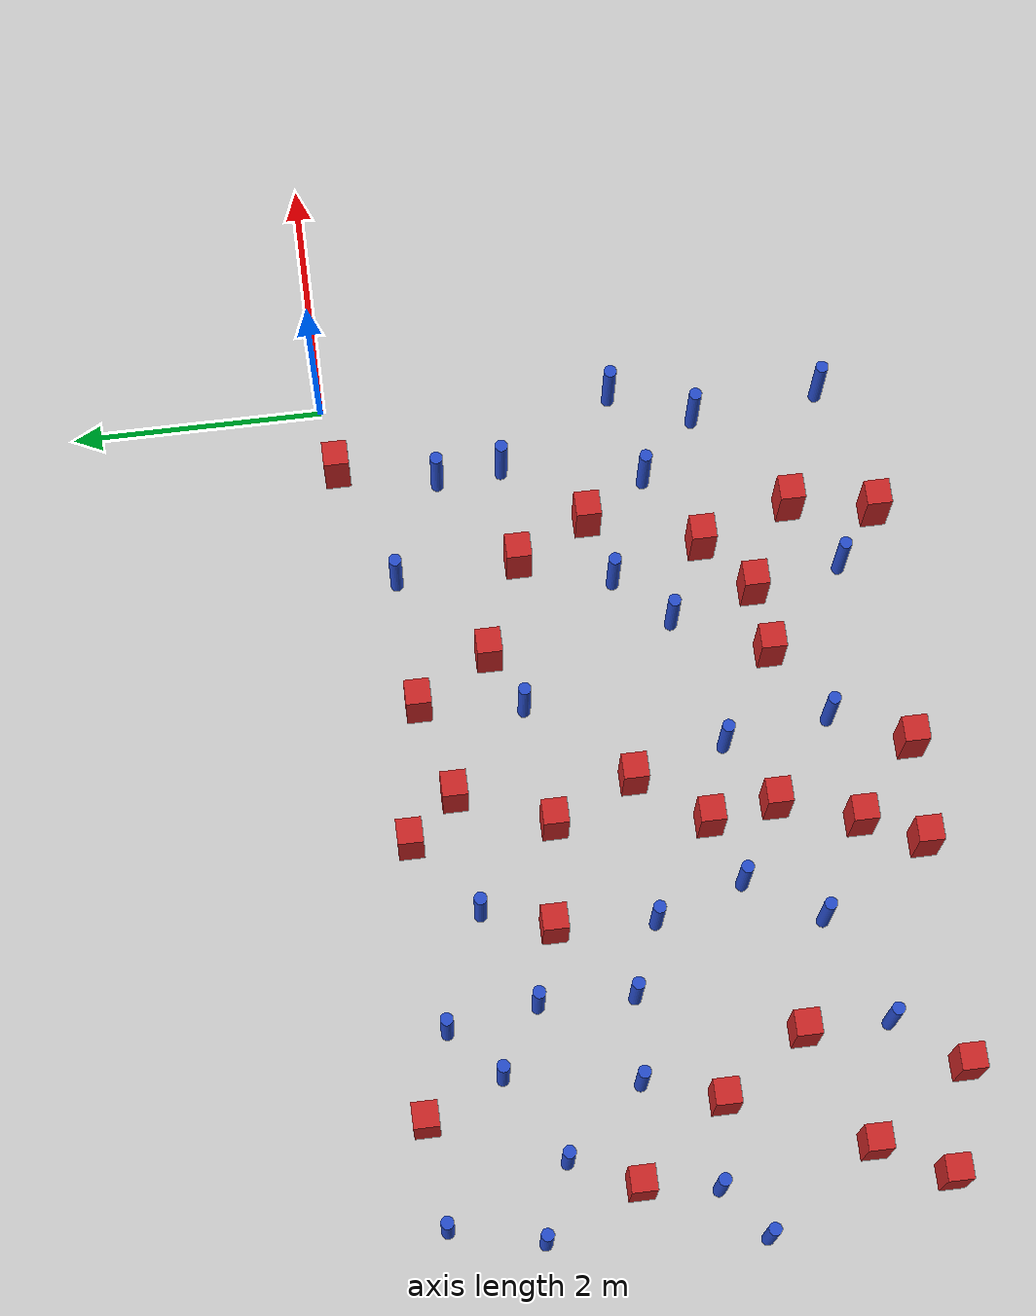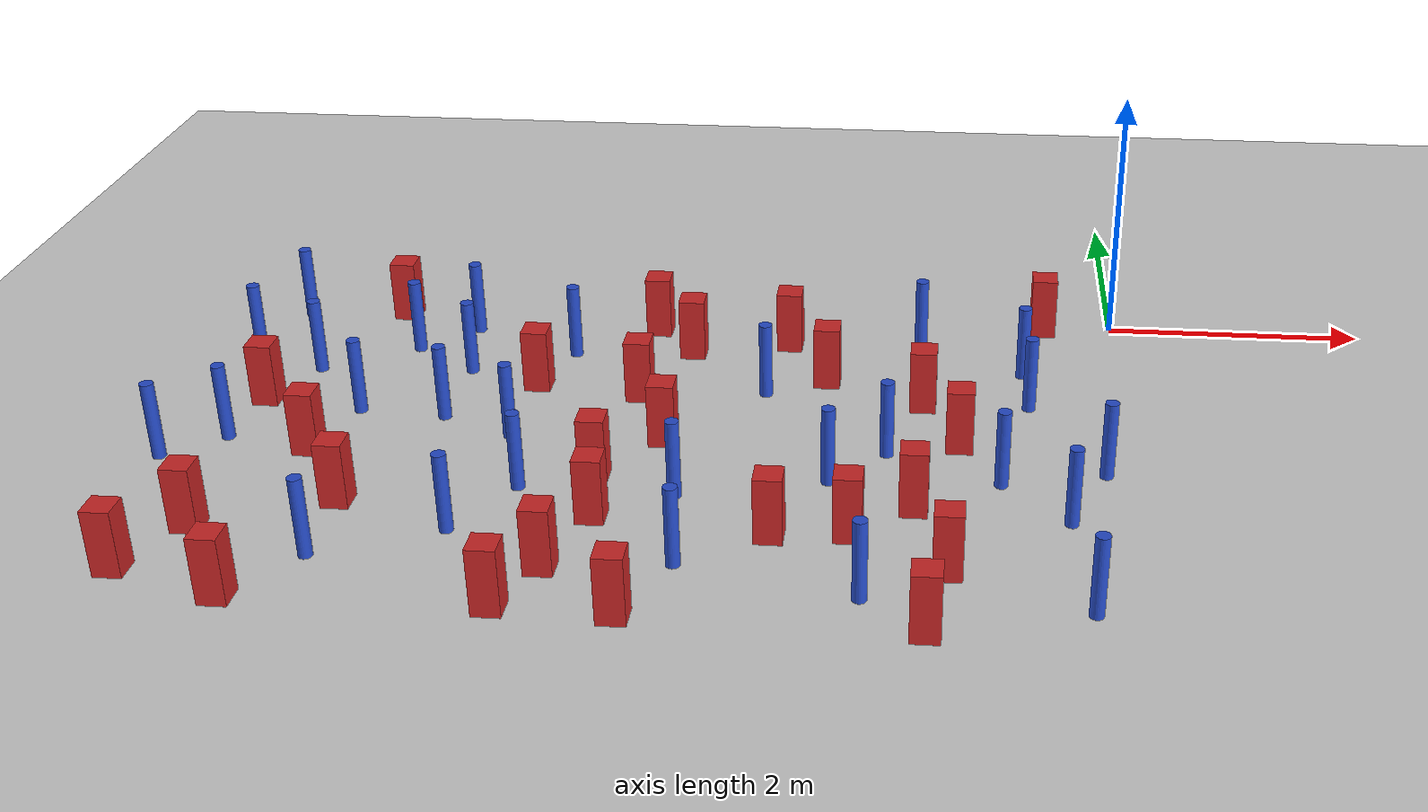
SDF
<sdf version="1.6">
 <world name="default">
  <model name="ground_plane">
   <static>1</static>
   <link name="link">
    <collision name="collision">
     <geometry><plane><normal>0 0 1</normal><size>100 100</size></plane></geometry>
     <surface><friction><ode><mu>100</mu><mu2>50</mu2></ode></friction></surface>
    </collision>
    <visual name="visual">
     <cast_shadows>0</cast_shadows>
     <geometry><plane><normal>0 0 1</normal><size>100 100</size></plane></geometry>
     <material>
      <ambient>1.0 1.0 1.0 1.0</ambient>
      <diffuse>0.8 0.8 0.8 1.0</diffuse>
      <specular>0.01 0.01 0.01 1.000000</specular>
     </material>
    </visual>
   </link>
  </model>
  <model name="square_post_obstacle4">
   <static>true</static>
   <pose>-1.2754052934 -3.62407108319 8.22691968438e-08 7.2212513382e-06 -7.54495500217e-07 2.29674213826e-05</pose>
   <link name="link">
    <pose>0 0 0.25 0 -0 0</pose>
    <inertial>
     <mass>100</mass>
     <inertia>
      <ixx>0.166667</ixx>
      <ixy>0</ixy>
      <ixz>0</ixz>
      <iyy>0.166667</iyy>
      <iyz>0</iyz>
      <izz>0.166667</izz>
     </inertia>
    </inertial>
    <collision name="collision"><geometry><box><size>.2 .2 .5</size></box></geometry></collision>
    <visual name="visual">
     <geometry><box><size>.2 .2 .5</size></box></geometry>
     <material>
      <script><name>Gazebo/Red</name><uri>file://media/materials/scripts/gazebo.material</uri></script>
     </material>
    </visual>
   </link>
  </model>
  <model name="pole_obstacle5">
   <static>true</static>
   <pose>-4.65952550141 -3.3882482919 2.88873142074e-08 -9.90536690245e-09 4.6021994898e-07 -1.20965994966e-07</pose>
   <link name="link">
    <pose>0 0 0.3 0 -0 0</pose>
    <inertial>
     <mass>1</mass>
     <inertia><ixx>0.145833</ixx><ixy>0</ixy><ixz>0</ixz><iyy>0.145833</iyy><iyz>0</iyz><izz>0.125</izz></inertia>
    </inertial>
    <collision name="collision">
     <geometry><cylinder><radius>0.05</radius><length>.6</length></cylinder></geometry>
    </collision>
    <visual name="visual">
     <geometry><cylinder><radius>0.05</radius><length>.6</length></cylinder></geometry>
     <material>
      <script><name>Gazebo/Blue</name><uri>file://media/materials/scripts/gazebo.material</uri></script>
     </material>
    </visual>
   </link>
  </model>
  <model name="square_post_obstacle7">
   <static>true</static>
   <pose>-1.21749053207 -2.01002110058 8.22691968438e-08 7.2212513382e-06 -7.54495500217e-07 2.29674213826e-05</pose>
   <link name="link">
    <pose>0 0 0.25 0 -0 0</pose>
    <inertial>
     <mass>100</mass>
     <inertia>
      <ixx>0.166667</ixx>
      <ixy>0</ixy>
      <ixz>0</ixz>
      <iyy>0.166667</iyy>
      <iyz>0</iyz>
      <izz>0.166667</izz>
     </inertia>
    </inertial>
    <collision name="collision"><geometry><box><size>.2 .2 .5</size></box></geometry></collision>
    <visual name="visual">
     <geometry><box><size>.2 .2 .5</size></box></geometry>
     <material>
      <script><name>Gazebo/Red</name><uri>file://media/materials/scripts/gazebo.material</uri></script>
     </material>
    </visual>
   </link>
  </model>
  <model name="square_post_obstacle10">
   <static>true</static>
   <pose>-5.9056552785 -4.26731862968 8.22691968438e-08 7.22125133819e-06 -7.54495500217e-07 2.29674213826e-05</pose>
   <link name="link">
    <pose>0 0 0.25 0 -0 0</pose>
    <inertial>
     <mass>100</mass>
     <inertia>
      <ixx>0.166667</ixx>
      <ixy>0</ixy>
      <ixz>0</ixz>
      <iyy>0.166667</iyy>
      <iyz>0</iyz>
      <izz>0.166667</izz>
     </inertia>
    </inertial>
    <collision name="collision"><geometry><box><size>.2 .2 .5</size></box></geometry></collision>
    <visual name="visual">
     <geometry><box><size>.2 .2 .5</size></box></geometry>
     <material>
      <script><name>Gazebo/Red</name><uri>file://media/materials/scripts/gazebo.material</uri></script>
     </material>
    </visual>
   </link>
  </model>
  <model name="square_post_obstacle29">
   <static>true</static>
   <pose>-0.556420358068 -0.08132773239 8.22691968438e-08 7.2212513382e-06 -7.54495500217e-07 2.29674213826e-05</pose>
   <link name="link">
    <pose>0 0 0.25 0 -0 0</pose>
    <inertial>
     <mass>100</mass>
     <inertia>
      <ixx>0.166667</ixx>
      <ixy>0</ixy>
      <ixz>0</ixz>
      <iyy>0.166667</iyy>
      <iyz>0</iyz>
      <izz>0.166667</izz>
     </inertia>
    </inertial>
    <collision name="collision"><geometry><box><size>.2 .2 .5</size></box></geometry></collision>
    <visual name="visual">
     <geometry><box><size>.2 .2 .5</size></box></geometry>
     <material>
      <script><name>Gazebo/Red</name><uri>file://media/materials/scripts/gazebo.material</uri></script>
     </material>
    </visual>
   </link>
  </model>
  <model name="pole_obstacle26">
   <static>true</static>
   <pose>-6.83600896861 -0.968088789849 2.88873142074e-08 -9.90536689779e-09 4.60219948991e-07 -1.20965994959e-07</pose>
   <link name="link">
    <pose>0 0 0.3 0 -0 0</pose>
    <inertial>
     <mass>1</mass>
     <inertia><ixx>0.145833</ixx><ixy>0</ixy><ixz>0</ixz><iyy>0.145833</iyy><iyz>0</iyz><izz>0.125</izz></inertia>
    </inertial>
    <collision name="collision">
     <geometry><cylinder><radius>0.05</radius><length>.6</length></cylinder></geometry>
    </collision>
    <visual name="visual">
     <geometry><cylinder><radius>0.05</radius><length>.6</length></cylinder></geometry>
     <material>
      <script><name>Gazebo/Blue</name><uri>file://media/materials/scripts/gazebo.material</uri></script>
     </material>
    </visual>
   </link>
  </model>
  <model name="square_post_obstacle32">
   <static>true</static>
   <pose>-5.50566018214 -3.09363316899 8.22691968438e-08 7.2212513382e-06 -7.54495500217e-07 2.29674213826e-05</pose>
   <link name="link">
    <pose>0 0 0.25 0 -0 0</pose>
    <inertial>
     <mass>100</mass>
     <inertia>
      <ixx>0.166667</ixx>
      <ixy>0</ixy>
      <ixz>0</ixz>
      <iyy>0.166667</iyy>
      <iyz>0</iyz>
      <izz>0.166667</izz>
     </inertia>
    </inertial>
    <collision name="collision"><geometry><box><size>.2 .2 .5</size></box></geometry></collision>
    <visual name="visual">
     <geometry><box><size>.2 .2 .5</size></box></geometry>
     <material>
      <script><name>Gazebo/Red</name><uri>file://media/materials/scripts/gazebo.material</uri></script>
     </material>
    </visual>
   </link>
  </model>
  <model name="pole_obstacle39">
   <static>true</static>
   <pose>-0.334573769769 -4.00441448272 2.88873142074e-08 -9.90536689517e-09 4.60219948997e-07 -1.20965994954e-07</pose>
   <link name="link">
    <pose>0 0 0.3 0 -0 0</pose>
    <inertial>
     <mass>1</mass>
     <inertia><ixx>0.145833</ixx><ixy>0</ixy><ixz>0</ixz><iyy>0.145833</iyy><iyz>0</iyz><izz>0.125</izz></inertia>
    </inertial>
    <collision name="collision">
     <geometry><cylinder><radius>0.05</radius><length>.6</length></cylinder></geometry>
    </collision>
    <visual name="visual">
     <geometry><cylinder><radius>0.05</radius><length>.6</length></cylinder></geometry>
     <material>
      <script><name>Gazebo/Blue</name><uri>file://media/materials/scripts/gazebo.material</uri></script>
     </material>
    </visual>
   </link>
  </model>
  <model name="square_post_obstacle40">
   <static>true</static>
   <pose>-3.67037468231 -1.43494416955 8.22691968438e-08 7.2212513382e-06 -7.54495500217e-07 2.29674213826e-05</pose>
   <link name="link">
    <pose>0 0 0.25 0 -0 0</pose>
    <inertial>
     <mass>100</mass>
     <inertia>
      <ixx>0.166667</ixx>
      <ixy>0</ixy>
      <ixz>0</ixz>
      <iyy>0.166667</iyy>
      <iyz>0</iyz>
      <izz>0.166667</izz>
     </inertia>
    </inertial>
    <collision name="collision"><geometry><box><size>.2 .2 .5</size></box></geometry></collision>
    <visual name="visual">
     <geometry><box><size>.2 .2 .5</size></box></geometry>
     <material>
      <script><name>Gazebo/Red</name><uri>file://media/materials/scripts/gazebo.material</uri></script>
     </material>
    </visual>
   </link>
  </model>
  <model name="square_post_obstacle46">
   <static>true</static>
   <pose>-6.41098922806 -3.48403583572 8.22691968438e-08 7.2212513382e-06 -7.54495500217e-07 2.29674213826e-05</pose>
   <link name="link">
    <pose>0 0 0.25 0 -0 0</pose>
    <inertial>
     <mass>100</mass>
     <inertia>
      <ixx>0.166667</ixx>
      <ixy>0</ixy>
      <ixz>0</ixz>
      <iyy>0.166667</iyy>
      <iyz>0</iyz>
      <izz>0.166667</izz>
     </inertia>
    </inertial>
    <collision name="collision"><geometry><box><size>.2 .2 .5</size></box></geometry></collision>
    <visual name="visual">
     <geometry><box><size>.2 .2 .5</size></box></geometry>
     <material>
      <script><name>Gazebo/Red</name><uri>file://media/materials/scripts/gazebo.material</uri></script>
     </material>
    </visual>
   </link>
  </model>
  <model name="pole_obstacle53">
   <static>true</static>
   <pose>-0.168261608615 -2.32770708085 2.88873142074e-08 -9.9053669244e-09 4.60219948928e-07 -1.20965994988e-07</pose>
   <link name="link">
    <pose>0 0 0.3 0 -0 0</pose>
    <inertial>
     <mass>1</mass>
     <inertia><ixx>0.145833</ixx><ixy>0</ixy><ixz>0</ixz><iyy>0.145833</iyy><iyz>0</iyz><izz>0.125</izz></inertia>
    </inertial>
    <collision name="collision">
     <geometry><cylinder><radius>0.05</radius><length>.6</length></cylinder></geometry>
    </collision>
    <visual name="visual">
     <geometry><cylinder><radius>0.05</radius><length>.6</length></cylinder></geometry>
     <material>
      <script><name>Gazebo/Blue</name><uri>file://media/materials/scripts/gazebo.material</uri></script>
     </material>
    </visual>
   </link>
  </model>
  <model name="pole_obstacle54">
   <static>true</static>
   <pose>-3.19066047119 -2.83174068001 2.88873142074e-08 -9.90536690232e-09 4.6021994898e-07 -1.20965994968e-07</pose>
   <link name="link">
    <pose>0 0 0.3 0 -0 0</pose>
    <inertial>
     <mass>1</mass>
     <inertia><ixx>0.145833</ixx><ixy>0</ixy><ixz>0</ixz><iyy>0.145833</iyy><iyz>0</iyz><izz>0.125</izz></inertia>
    </inertial>
    <collision name="collision">
     <geometry><cylinder><radius>0.05</radius><length>.6</length></cylinder></geometry>
    </collision>
    <visual name="visual">
     <geometry><cylinder><radius>0.05</radius><length>.6</length></cylinder></geometry>
     <material>
      <script><name>Gazebo/Blue</name><uri>file://media/materials/scripts/gazebo.material</uri></script>
     </material>
    </visual>
   </link>
  </model>
  <model name="pole_obstacle55">
   <static>true</static>
   <pose>-2.13584533812 -2.56666124665 2.88873142074e-08 -9.90536690232e-09 4.6021994898e-07 -1.20965994968e-07</pose>
   <link name="link">
    <pose>0 0 0.3 0 -0 0</pose>
    <inertial>
     <mass>1</mass>
     <inertia><ixx>0.145833</ixx><ixy>0</ixy><ixz>0</ixz><iyy>0.145833</iyy><iyz>0</iyz><izz>0.125</izz></inertia>
    </inertial>
    <collision name="collision">
     <geometry><cylinder><radius>0.05</radius><length>.6</length></cylinder></geometry>
    </collision>
    <visual name="visual">
     <geometry><cylinder><radius>0.05</radius><length>.6</length></cylinder></geometry>
     <material>
      <script><name>Gazebo/Blue</name><uri>file://media/materials/scripts/gazebo.material</uri></script>
     </material>
    </visual>
   </link>
  </model>
  <model name="pole_obstacle60">
   <static>true</static>
   <pose>-6.66156100792 -0.257047077942 2.88873142074e-08 -9.9053668927e-09 4.60219949003e-07 -1.20965994954e-07</pose>
   <link name="link">
    <pose>0 0 0.3 0 -0 0</pose>
    <inertial>
     <mass>1</mass>
     <inertia><ixx>0.145833</ixx><ixy>0</ixy><ixz>0</ixz><iyy>0.145833</iyy><iyz>0</iyz><izz>0.125</izz></inertia>
    </inertial>
    <collision name="collision">
     <geometry><cylinder><radius>0.05</radius><length>.6</length></cylinder></geometry>
    </collision>
    <visual name="visual">
     <geometry><cylinder><radius>0.05</radius><length>.6</length></cylinder></geometry>
     <material>
      <script><name>Gazebo/Blue</name><uri>file://media/materials/scripts/gazebo.material</uri></script>
     </material>
    </visual>
   </link>
  </model>
  <model name="pole_obstacle62">
   <static>true</static>
   <pose>-0.736655934792 -0.868895056181 2.88873142074e-08 -9.90536689967e-09 4.60219948986e-07 -1.20965994963e-07</pose>
   <link name="link">
    <pose>0 0 0.3 0 -0 0</pose>
    <inertial>
     <mass>1</mass>
     <inertia><ixx>0.145833</ixx><ixy>0</ixy><ixz>0</ixz><iyy>0.145833</iyy><iyz>0</iyz><izz>0.125</izz></inertia>
    </inertial>
    <collision name="collision">
     <geometry><cylinder><radius>0.05</radius><length>.6</length></cylinder></geometry>
    </collision>
    <visual name="visual">
     <geometry><cylinder><radius>0.05</radius><length>.6</length></cylinder></geometry>
     <material>
      <script><name>Gazebo/Blue</name><uri>file://media/materials/scripts/gazebo.material</uri></script>
     </material>
    </visual>
   </link>
  </model>
  <model name="square_post_obstacle65">
   <static>true</static>
   <pose>-3.69109883029 -0.317123439873 8.22691968438e-08 7.2212513382e-06 -7.54495500217e-07 2.29674213826e-05</pose>
   <link name="link">
    <pose>0 0 0.25 0 -0 0</pose>
    <inertial>
     <mass>100</mass>
     <inertia>
      <ixx>0.166667</ixx>
      <ixy>0</ixy>
      <ixz>0</ixz>
      <iyy>0.166667</iyy>
      <iyz>0</iyz>
      <izz>0.166667</izz>
     </inertia>
    </inertial>
    <collision name="collision"><geometry><box><size>.2 .2 .5</size></box></geometry></collision>
    <visual name="visual">
     <geometry><box><size>.2 .2 .5</size></box></geometry>
     <material>
      <script><name>Gazebo/Red</name><uri>file://media/materials/scripts/gazebo.material</uri></script>
     </material>
    </visual>
   </link>
  </model>
  <model name="square_post_obstacle73">
   <static>true</static>
   <pose>-4.48367584579 -1.32753151781 8.22691968438e-08 7.2212513382e-06 -7.54495500217e-07 2.29674213826e-05</pose>
   <link name="link">
    <pose>0 0 0.25 0 -0 0</pose>
    <inertial>
     <mass>100</mass>
     <inertia>
      <ixx>0.166667</ixx>
      <ixy>0</ixy>
      <ixz>0</ixz>
      <iyy>0.166667</iyy>
      <iyz>0</iyz>
      <izz>0.166667</izz>
     </inertia>
    </inertial>
    <collision name="collision"><geometry><box><size>.2 .2 .5</size></box></geometry></collision>
    <visual name="visual">
     <geometry><box><size>.2 .2 .5</size></box></geometry>
     <material>
      <script><name>Gazebo/Red</name><uri>file://media/materials/scripts/gazebo.material</uri></script>
     </material>
    </visual>
   </link>
  </model>
  <model name="pole_obstacle84">
   <static>true</static>
   <pose>-5.74529104234 -1.82798175392 2.88873142074e-08 -9.90536689445e-09 4.60219948999e-07 -1.20965994956e-07</pose>
   <link name="link">
    <pose>0 0 0.3 0 -0 0</pose>
    <inertial>
     <mass>1</mass>
     <inertia><ixx>0.145833</ixx><ixy>0</ixy><ixz>0</ixz><iyy>0.145833</iyy><iyz>0</iyz><izz>0.125</izz></inertia>
    </inertial>
    <collision name="collision">
     <geometry><cylinder><radius>0.05</radius><length>.6</length></cylinder></geometry>
    </collision>
    <visual name="visual">
     <geometry><cylinder><radius>0.05</radius><length>.6</length></cylinder></geometry>
     <material>
      <script><name>Gazebo/Blue</name><uri>file://media/materials/scripts/gazebo.material</uri></script>
     </material>
    </visual>
   </link>
  </model>
  <model name="pole_obstacle89">
   <static>true</static>
   <pose>-0.442863518455 -2.97269753947 2.88873142074e-08 -9.90536689663e-09 4.60219948993e-07 -1.20965994959e-07</pose>
   <link name="link">
    <pose>0 0 0.3 0 -0 0</pose>
    <inertial>
     <mass>1</mass>
     <inertia><ixx>0.145833</ixx><ixy>0</ixy><ixz>0</ixz><iyy>0.145833</iyy><iyz>0</iyz><izz>0.125</izz></inertia>
    </inertial>
    <collision name="collision">
     <geometry><cylinder><radius>0.05</radius><length>.6</length></cylinder></geometry>
    </collision>
    <visual name="visual">
     <geometry><cylinder><radius>0.05</radius><length>.6</length></cylinder></geometry>
     <material>
      <script><name>Gazebo/Blue</name><uri>file://media/materials/scripts/gazebo.material</uri></script>
     </material>
    </visual>
   </link>
  </model>
  <model name="pole_obstacle94">
   <static>true</static>
   <pose>-4.30374474331 -2.81215744634 2.88873142074e-08 -9.90536690245e-09 4.6021994898e-07 -1.20965994966e-07</pose>
   <link name="link">
    <pose>0 0 0.3 0 -0 0</pose>
    <inertial>
     <mass>1</mass>
     <inertia><ixx>0.145833</ixx><ixy>0</ixy><ixz>0</ixz><iyy>0.145833</iyy><iyz>0</iyz><izz>0.125</izz></inertia>
    </inertial>
    <collision name="collision">
     <geometry><cylinder><radius>0.05</radius><length>.6</length></cylinder></geometry>
    </collision>
    <visual name="visual">
     <geometry><cylinder><radius>0.05</radius><length>.6</length></cylinder></geometry>
     <material>
      <script><name>Gazebo/Blue</name><uri>file://media/materials/scripts/gazebo.material</uri></script>
     </material>
    </visual>
   </link>
  </model>
  <model name="pole_obstacle95">
   <static>true</static>
   <pose>-2.70999887276 -1.32281034531 2.88873142074e-08 -9.90536689395e-09 4.60219949e-07 -1.20965994953e-07</pose>
   <link name="link">
    <pose>0 0 0.3 0 -0 0</pose>
    <inertial>
     <mass>1</mass>
     <inertia><ixx>0.145833</ixx><ixy>0</ixy><ixz>0</ixz><iyy>0.145833</iyy><iyz>0</iyz><izz>0.125</izz></inertia>
    </inertial>
    <collision name="collision">
     <geometry><cylinder><radius>0.05</radius><length>.6</length></cylinder></geometry>
    </collision>
    <visual name="visual">
     <geometry><cylinder><radius>0.05</radius><length>.6</length></cylinder></geometry>
     <material>
      <script><name>Gazebo/Blue</name><uri>file://media/materials/scripts/gazebo.material</uri></script>
     </material>
    </visual>
   </link>
  </model>
  <model name="pole_obstacle102">
   <static>true</static>
   <pose>-5.06370864584 -1.13273483864 2.88873142074e-08 -9.90536689445e-09 4.60219948999e-07 -1.20965994956e-07</pose>
   <link name="link">
    <pose>0 0 0.3 0 -0 0</pose>
    <inertial>
     <mass>1</mass>
     <inertia><ixx>0.145833</ixx><ixy>0</ixy><ixz>0</ixz><iyy>0.145833</iyy><iyz>0</iyz><izz>0.125</izz></inertia>
    </inertial>
    <collision name="collision">
     <geometry><cylinder><radius>0.05</radius><length>.6</length></cylinder></geometry>
    </collision>
    <visual name="visual">
     <geometry><cylinder><radius>0.05</radius><length>.6</length></cylinder></geometry>
     <material>
      <script><name>Gazebo/Blue</name><uri>file://media/materials/scripts/gazebo.material</uri></script>
     </material>
    </visual>
   </link>
  </model>
  <model name="square_post_obstacle93">
   <static>true</static>
   <pose>-3.35913928134 -0.696120156664 8.22691968438e-08 7.2212513382e-06 -7.54495500217e-07 2.29674213826e-05</pose>
   <link name="link">
    <pose>0 0 0.25 0 -0 0</pose>
    <inertial>
     <mass>100</mass>
     <inertia>
      <ixx>0.166667</ixx>
      <ixy>0</ixy>
      <ixz>0</ixz>
      <iyy>0.166667</iyy>
      <iyz>0</iyz>
      <izz>0.166667</izz>
     </inertia>
    </inertial>
    <collision name="collision"><geometry><box><size>.2 .2 .5</size></box></geometry></collision>
    <visual name="visual">
     <geometry><box><size>.2 .2 .5</size></box></geometry>
     <material>
      <script><name>Gazebo/Red</name><uri>file://media/materials/scripts/gazebo.material</uri></script>
     </material>
    </visual>
   </link>
  </model>
  <model name="pole_obstacle105">
   <static>true</static>
   <pose>-5.18200273573 -0.427077900193 2.88873142074e-08 -9.90536689981e-09 4.60219948986e-07 -1.20965994962e-07</pose>
   <link name="link">
    <pose>0 0 0.3 0 -0 0</pose>
    <inertial>
     <mass>1</mass>
     <inertia><ixx>0.145833</ixx><ixy>0</ixy><ixz>0</ixz><iyy>0.145833</iyy><iyz>0</iyz><izz>0.125</izz></inertia>
    </inertial>
    <collision name="collision">
     <geometry><cylinder><radius>0.05</radius><length>.6</length></cylinder></geometry>
    </collision>
    <visual name="visual">
     <geometry><cylinder><radius>0.05</radius><length>.6</length></cylinder></geometry>
     <material>
      <script><name>Gazebo/Blue</name><uri>file://media/materials/scripts/gazebo.material</uri></script>
     </material>
    </visual>
   </link>
  </model>
  <model name="square_post_obstacle95">
   <static>true</static>
   <pose>-1.95020607538 -3.23850889879 8.22691968438e-08 7.2212513382e-06 -7.54495500217e-07 2.29674213826e-05</pose>
   <link name="link">
    <pose>0 0 0.25 0 -0 0</pose>
    <inertial>
     <mass>100</mass>
     <inertia>
      <ixx>0.166667</ixx>
      <ixy>0</ixy>
      <ixz>0</ixz>
      <iyy>0.166667</iyy>
      <iyz>0</iyz>
      <izz>0.166667</izz>
     </inertia>
    </inertial>
    <collision name="collision"><geometry><box><size>.2 .2 .5</size></box></geometry></collision>
    <visual name="visual">
     <geometry><box><size>.2 .2 .5</size></box></geometry>
     <material>
      <script><name>Gazebo/Red</name><uri>file://media/materials/scripts/gazebo.material</uri></script>
     </material>
    </visual>
   </link>
  </model>
  <model name="square_post_obstacle96">
   <static>true</static>
   <pose>-4.14881035281 -4.2437548899 8.22691968438e-08 7.2212513382e-06 -7.54495500217e-07 2.29674213826e-05</pose>
   <link name="link">
    <pose>0 0 0.25 0 -0 0</pose>
    <inertial>
     <mass>100</mass>
     <inertia>
      <ixx>0.166667</ixx>
      <ixy>0</ixy>
      <ixz>0</ixz>
      <iyy>0.166667</iyy>
      <iyz>0</iyz>
      <izz>0.166667</izz>
     </inertia>
    </inertial>
    <collision name="collision"><geometry><box><size>.2 .2 .5</size></box></geometry></collision>
    <visual name="visual">
     <geometry><box><size>.2 .2 .5</size></box></geometry>
     <material>
      <script><name>Gazebo/Red</name><uri>file://media/materials/scripts/gazebo.material</uri></script>
     </material>
    </visual>
   </link>
  </model>
  <model name="pole_obstacle116">
   <static>true</static>
   <pose>-4.52870570708 -2.11202772901 2.88873142074e-08 -9.90536690245e-09 4.6021994898e-07 -1.20965994966e-07</pose>
   <link name="link">
    <pose>0 0 0.3 0 -0 0</pose>
    <inertial>
     <mass>1</mass>
     <inertia><ixx>0.145833</ixx><ixy>0</ixy><ixz>0</ixz><iyy>0.145833</iyy><iyz>0</iyz><izz>0.125</izz></inertia>
    </inertial>
    <collision name="collision">
     <geometry><cylinder><radius>0.05</radius><length>.6</length></cylinder></geometry>
    </collision>
    <visual name="visual">
     <geometry><cylinder><radius>0.05</radius><length>.6</length></cylinder></geometry>
     <material>
      <script><name>Gazebo/Blue</name><uri>file://media/materials/scripts/gazebo.material</uri></script>
     </material>
    </visual>
   </link>
  </model>
  <model name="square_post_obstacle106">
   <static>true</static>
   <pose>-3.3530707692 -4.26904555448 8.22691968438e-08 7.2212513382e-06 -7.54495500217e-07 2.29674213826e-05</pose>
   <link name="link">
    <pose>0 0 0.25 0 -0 0</pose>
    <inertial>
     <mass>100</mass>
     <inertia>
      <ixx>0.166667</ixx>
      <ixy>0</ixy>
      <ixz>0</ixz>
      <iyy>0.166667</iyy>
      <iyz>0</iyz>
      <izz>0.166667</izz>
     </inertia>
    </inertial>
    <collision name="collision"><geometry><box><size>.2 .2 .5</size></box></geometry></collision>
    <visual name="visual">
     <geometry><box><size>.2 .2 .5</size></box></geometry>
     <material>
      <script><name>Gazebo/Red</name><uri>file://media/materials/scripts/gazebo.material</uri></script>
     </material>
    </visual>
   </link>
  </model>
  <model name="pole_obstacle120">
   <static>true</static>
   <pose>-6.59694678575 -2.29969951514 2.88873142074e-08 -9.90536690245e-09 4.6021994898e-07 -1.20965994966e-07</pose>
   <link name="link">
    <pose>0 0 0.3 0 -0 0</pose>
    <inertial>
     <mass>1</mass>
     <inertia><ixx>0.145833</ixx><ixy>0</ixy><ixz>0</ixz><iyy>0.145833</iyy><iyz>0</iyz><izz>0.125</izz></inertia>
    </inertial>
    <collision name="collision">
     <geometry><cylinder><radius>0.05</radius><length>.6</length></cylinder></geometry>
    </collision>
    <visual name="visual">
     <geometry><cylinder><radius>0.05</radius><length>.6</length></cylinder></geometry>
     <material>
      <script><name>Gazebo/Blue</name><uri>file://media/materials/scripts/gazebo.material</uri></script>
     </material>
    </visual>
   </link>
  </model>
  <model name="pole_obstacle132">
   <static>true</static>
   <pose>-1.74237011918 -2.15348211563 2.88873142074e-08 -9.90536689791e-09 4.6021994899e-07 -1.20965994959e-07</pose>
   <link name="link">
    <pose>0 0 0.3 0 -0 0</pose>
    <inertial>
     <mass>1</mass>
     <inertia><ixx>0.145833</ixx><ixy>0</ixy><ixz>0</ixz><iyy>0.145833</iyy><iyz>0</iyz><izz>0.125</izz></inertia>
    </inertial>
    <collision name="collision">
     <geometry><cylinder><radius>0.05</radius><length>.6</length></cylinder></geometry>
    </collision>
    <visual name="visual">
     <geometry><cylinder><radius>0.05</radius><length>.6</length></cylinder></geometry>
     <material>
      <script><name>Gazebo/Blue</name><uri>file://media/materials/scripts/gazebo.material</uri></script>
     </material>
    </visual>
   </link>
  </model>
  <model name="pole_obstacle134">
   <static>true</static>
   <pose>-5.57746530238 -0.80158244859 2.88873142074e-08 -9.90536689837e-09 4.60219948989e-07 -1.2096599496e-07</pose>
   <link name="link">
    <pose>0 0 0.3 0 -0 0</pose>
    <inertial>
     <mass>1</mass>
     <inertia><ixx>0.145833</ixx><ixy>0</ixy><ixz>0</ixz><iyy>0.145833</iyy><iyz>0</iyz><izz>0.125</izz></inertia>
    </inertial>
    <collision name="collision">
     <geometry><cylinder><radius>0.05</radius><length>.6</length></cylinder></geometry>
    </collision>
    <visual name="visual">
     <geometry><cylinder><radius>0.05</radius><length>.6</length></cylinder></geometry>
     <material>
      <script><name>Gazebo/Blue</name><uri>file://media/materials/scripts/gazebo.material</uri></script>
     </material>
    </visual>
   </link>
  </model>
  <model name="square_post_obstacle125">
   <static>true</static>
   <pose>-1.50068093244 -1.42296836731 8.22691968438e-08 7.2212513382e-06 -7.54495500217e-07 2.29674213826e-05</pose>
   <link name="link">
    <pose>0 0 0.25 0 -0 0</pose>
    <inertial>
     <mass>100</mass>
     <inertia>
      <ixx>0.166667</ixx>
      <ixy>0</ixy>
      <ixz>0</ixz>
      <iyy>0.166667</iyy>
      <iyz>0</iyz>
      <izz>0.166667</izz>
     </inertia>
    </inertial>
    <collision name="collision"><geometry><box><size>.2 .2 .5</size></box></geometry></collision>
    <visual name="visual">
     <geometry><box><size>.2 .2 .5</size></box></geometry>
     <material>
      <script><name>Gazebo/Red</name><uri>file://media/materials/scripts/gazebo.material</uri></script>
     </material>
    </visual>
   </link>
  </model>
  <model name="square_post_obstacle126">
   <static>true</static>
   <pose>-2.25302487423 -1.09808245157 8.22691968438e-08 7.2212513382e-06 -7.54495500217e-07 2.29674213826e-05</pose>
   <link name="link">
    <pose>0 0 0.25 0 -0 0</pose>
    <inertial>
     <mass>100</mass>
     <inertia>
      <ixx>0.166667</ixx>
      <ixy>0</ixy>
      <ixz>0</ixz>
      <iyy>0.166667</iyy>
      <iyz>0</iyz>
      <izz>0.166667</izz>
     </inertia>
    </inertial>
    <collision name="collision"><geometry><box><size>.2 .2 .5</size></box></geometry></collision>
    <visual name="visual">
     <geometry><box><size>.2 .2 .5</size></box></geometry>
     <material>
      <script><name>Gazebo/Red</name><uri>file://media/materials/scripts/gazebo.material</uri></script>
     </material>
    </visual>
   </link>
  </model>
  <model name="square_post_obstacle133">
   <static>true</static>
   <pose>-6.5034825335 -1.71776491912 8.22691968438e-08 7.2212513382e-06 -7.54495500217e-07 2.29674213826e-05</pose>
   <link name="link">
    <pose>0 0 0.25 0 -0 0</pose>
    <inertial>
     <mass>100</mass>
     <inertia>
      <ixx>0.166667</ixx>
      <ixy>0</ixy>
      <ixz>0</ixz>
      <iyy>0.166667</iyy>
      <iyz>0</iyz>
      <izz>0.166667</izz>
     </inertia>
    </inertial>
    <collision name="collision"><geometry><box><size>.2 .2 .5</size></box></geometry></collision>
    <visual name="visual">
     <geometry><box><size>.2 .2 .5</size></box></geometry>
     <material>
      <script><name>Gazebo/Red</name><uri>file://media/materials/scripts/gazebo.material</uri></script>
     </material>
    </visual>
   </link>
  </model>
  <model name="square_post_obstacle135">
   <static>true</static>
   <pose>-2.47656776019 -3.29210974904 8.22691968438e-08 7.2212513382e-06 -7.54495500217e-07 2.29674213826e-05</pose>
   <link name="link">
    <pose>0 0 0.25 0 -0 0</pose>
    <inertial>
     <mass>100</mass>
     <inertia>
      <ixx>0.166667</ixx>
      <ixy>0</ixy>
      <ixz>0</ixz>
      <iyy>0.166667</iyy>
      <iyz>0</iyz>
      <izz>0.166667</izz>
     </inertia>
    </inertial>
    <collision name="collision"><geometry><box><size>.2 .2 .5</size></box></geometry></collision>
    <visual name="visual">
     <geometry><box><size>.2 .2 .5</size></box></geometry>
     <material>
      <script><name>Gazebo/Red</name><uri>file://media/materials/scripts/gazebo.material</uri></script>
     </material>
    </visual>
   </link>
  </model>
  <model name="square_post_obstacle141">
   <static>true</static>
   <pose>-5.94275235487 -2.42327255967 8.22691968438e-08 7.2212513382e-06 -7.54495500217e-07 2.29674213826e-05</pose>
   <link name="link">
    <pose>0 0 0.25 0 -0 0</pose>
    <inertial>
     <mass>100</mass>
     <inertia>
      <ixx>0.166667</ixx>
      <ixy>0</ixy>
      <ixz>0</ixz>
      <iyy>0.166667</iyy>
      <iyz>0</iyz>
      <izz>0.166667</izz>
     </inertia>
    </inertial>
    <collision name="collision"><geometry><box><size>.2 .2 .5</size></box></geometry></collision>
    <visual name="visual">
     <geometry><box><size>.2 .2 .5</size></box></geometry>
     <material>
      <script><name>Gazebo/Red</name><uri>file://media/materials/scripts/gazebo.material</uri></script>
     </material>
    </visual>
   </link>
  </model>
  <model name="pole_obstacle152">
   <static>true</static>
   <pose>-3.06912791709 -3.67023295797 2.88873142074e-08 -9.90536689597e-09 4.60219948995e-07 -1.20965994957e-07</pose>
   <link name="link">
    <pose>0 0 0.3 0 -0 0</pose>
    <inertial>
     <mass>1</mass>
     <inertia><ixx>0.145833</ixx><ixy>0</ixy><ixz>0</ixz><iyy>0.145833</iyy><iyz>0</iyz><izz>0.125</izz></inertia>
    </inertial>
    <collision name="collision">
     <geometry><cylinder><radius>0.05</radius><length>.6</length></cylinder></geometry>
    </collision>
    <visual name="visual">
     <geometry><cylinder><radius>0.05</radius><length>.6</length></cylinder></geometry>
     <material>
      <script><name>Gazebo/Blue</name><uri>file://media/materials/scripts/gazebo.material</uri></script>
     </material>
    </visual>
   </link>
  </model>
  <model name="pole_obstacle166">
   <static>true</static>
   <pose>-5.08399902172 -1.87522627431 2.88873142074e-08 -9.90536689445e-09 4.60219948999e-07 -1.20965994956e-07</pose>
   <link name="link">
    <pose>0 0 0.3 0 -0 0</pose>
    <inertial>
     <mass>1</mass>
     <inertia><ixx>0.145833</ixx><ixy>0</ixy><ixz>0</ixz><iyy>0.145833</iyy><iyz>0</iyz><izz>0.125</izz></inertia>
    </inertial>
    <collision name="collision">
     <geometry><cylinder><radius>0.05</radius><length>.6</length></cylinder></geometry>
    </collision>
    <visual name="visual">
     <geometry><cylinder><radius>0.05</radius><length>.6</length></cylinder></geometry>
     <material>
      <script><name>Gazebo/Blue</name><uri>file://media/materials/scripts/gazebo.material</uri></script>
     </material>
    </visual>
   </link>
  </model>
  <model name="pole_obstacle169">
   <static>true</static>
   <pose>-1.54444981959 -0.451463594082 2.88873142074e-08 -9.90536689816e-09 4.6021994899e-07 -1.2096599496e-07</pose>
   <link name="link">
    <pose>0 0 0.3 0 -0 0</pose>
    <inertial>
     <mass>1</mass>
     <inertia><ixx>0.145833</ixx><ixy>0</ixy><ixz>0</ixz><iyy>0.145833</iyy><iyz>0</iyz><izz>0.125</izz></inertia>
    </inertial>
    <collision name="collision">
     <geometry><cylinder><radius>0.05</radius><length>.6</length></cylinder></geometry>
    </collision>
    <visual name="visual">
     <geometry><cylinder><radius>0.05</radius><length>.6</length></cylinder></geometry>
     <material>
      <script><name>Gazebo/Blue</name><uri>file://media/materials/scripts/gazebo.material</uri></script>
     </material>
    </visual>
   </link>
  </model>
  <model name="pole_obstacle170">
   <static>true</static>
   <pose>-0.697428145118 -1.38971903456 2.88873142074e-08 -9.90536689855e-09 4.60219948989e-07 -1.20965994962e-07</pose>
   <link name="link">
    <pose>0 0 0.3 0 -0 0</pose>
    <inertial>
     <mass>1</mass>
     <inertia><ixx>0.145833</ixx><ixy>0</ixy><ixz>0</ixz><iyy>0.145833</iyy><iyz>0</iyz><izz>0.125</izz></inertia>
    </inertial>
    <collision name="collision">
     <geometry><cylinder><radius>0.05</radius><length>.6</length></cylinder></geometry>
    </collision>
    <visual name="visual">
     <geometry><cylinder><radius>0.05</radius><length>.6</length></cylinder></geometry>
     <material>
      <script><name>Gazebo/Blue</name><uri>file://media/materials/scripts/gazebo.material</uri></script>
     </material>
    </visual>
   </link>
  </model>
  <model name="pole_obstacle171">
   <static>true</static>
   <pose>-1.82932170319 -3.9567540276 2.88873142074e-08 -9.90536689586e-09 4.60219948995e-07 -1.20965994956e-07</pose>
   <link name="link">
    <pose>0 0 0.3 0 -0 0</pose>
    <inertial>
     <mass>1</mass>
     <inertia><ixx>0.145833</ixx><ixy>0</ixy><ixz>0</ixz><iyy>0.145833</iyy><iyz>0</iyz><izz>0.125</izz></inertia>
    </inertial>
    <collision name="collision">
     <geometry><cylinder><radius>0.05</radius><length>.6</length></cylinder></geometry>
    </collision>
    <visual name="visual">
     <geometry><cylinder><radius>0.05</radius><length>.6</length></cylinder></geometry>
     <material>
      <script><name>Gazebo/Blue</name><uri>file://media/materials/scripts/gazebo.material</uri></script>
     </material>
    </visual>
   </link>
  </model>
  <model name="square_post_obstacle162">
   <static>true</static>
   <pose>-3.71229348641 -3.15207496332 8.22691968438e-08 7.2212513382e-06 -7.54495500217e-07 2.29674213826e-05</pose>
   <link name="link">
    <pose>0 0 0.25 0 -0 0</pose>
    <inertial>
     <mass>100</mass>
     <inertia>
      <ixx>0.166667</ixx>
      <ixy>0</ixy>
      <ixz>0</ixz>
      <iyy>0.166667</iyy>
      <iyz>0</iyz>
      <izz>0.166667</izz>
     </inertia>
    </inertial>
    <collision name="collision"><geometry><box><size>.2 .2 .5</size></box></geometry></collision>
    <visual name="visual">
     <geometry><box><size>.2 .2 .5</size></box></geometry>
     <material>
      <script><name>Gazebo/Red</name><uri>file://media/materials/scripts/gazebo.material</uri></script>
     </material>
    </visual>
   </link>
  </model>
  <model name="square_post_obstacle163">
   <static>true</static>
   <pose>-1.40123818037 -4.29416679502 8.22691968438e-08 7.2212513382e-06 -7.54495500217e-07 2.29674213826e-05</pose>
   <link name="link">
    <pose>0 0 0.25 0 -0 0</pose>
    <inertial>
     <mass>100</mass>
     <inertia>
      <ixx>0.166667</ixx>
      <ixy>0</ixy>
      <ixz>0</ixz>
      <iyy>0.166667</iyy>
      <iyz>0</iyz>
      <izz>0.166667</izz>
     </inertia>
    </inertial>
    <collision name="collision"><geometry><box><size>.2 .2 .5</size></box></geometry></collision>
    <visual name="visual">
     <geometry><box><size>.2 .2 .5</size></box></geometry>
     <material>
      <script><name>Gazebo/Red</name><uri>file://media/materials/scripts/gazebo.material</uri></script>
     </material>
    </visual>
   </link>
  </model>
  <model name="pole_obstacle175">
   <static>true</static>
   <pose>-4.30227671134 -0.785836820361 2.88873142074e-08 -9.90536689837e-09 4.60219948989e-07 -1.2096599496e-07</pose>
   <link name="link">
    <pose>0 0 0.3 0 -0 0</pose>
    <inertial>
     <mass>1</mass>
     <inertia><ixx>0.145833</ixx><ixy>0</ixy><ixz>0</ixz><iyy>0.145833</iyy><iyz>0</iyz><izz>0.125</izz></inertia>
    </inertial>
    <collision name="collision">
     <geometry><cylinder><radius>0.05</radius><length>.6</length></cylinder></geometry>
    </collision>
    <visual name="visual">
     <geometry><cylinder><radius>0.05</radius><length>.6</length></cylinder></geometry>
     <material>
      <script><name>Gazebo/Blue</name><uri>file://media/materials/scripts/gazebo.material</uri></script>
     </material>
    </visual>
   </link>
  </model>
  <model name="pole_obstacle177">
   <static>true</static>
   <pose>-6.26156647738 -1.20282108425 2.88873142074e-08 -9.90536689445e-09 4.60219948999e-07 -1.20965994956e-07</pose>
   <link name="link">
    <pose>0 0 0.3 0 -0 0</pose>
    <inertial>
     <mass>1</mass>
     <inertia><ixx>0.145833</ixx><ixy>0</ixy><ixz>0</ixz><iyy>0.145833</iyy><iyz>0</iyz><izz>0.125</izz></inertia>
    </inertial>
    <collision name="collision">
     <geometry><cylinder><radius>0.05</radius><length>.6</length></cylinder></geometry>
    </collision>
    <visual name="visual">
     <geometry><cylinder><radius>0.05</radius><length>.6</length></cylinder></geometry>
     <material>
      <script><name>Gazebo/Blue</name><uri>file://media/materials/scripts/gazebo.material</uri></script>
     </material>
    </visual>
   </link>
  </model>
  <model name="square_post_obstacle167">
   <static>true</static>
   <pose>-3.92482268435 -3.78111342184 8.22691968438e-08 7.2212513382e-06 -7.54495500217e-07 2.29674213826e-05</pose>
   <link name="link">
    <pose>0 0 0.25 0 -0 0</pose>
    <inertial>
     <mass>100</mass>
     <inertia>
      <ixx>0.166667</ixx>
      <ixy>0</ixy>
      <ixz>0</ixz>
      <iyy>0.166667</iyy>
      <iyz>0</iyz>
      <izz>0.166667</izz>
     </inertia>
    </inertial>
    <collision name="collision"><geometry><box><size>.2 .2 .5</size></box></geometry></collision>
    <visual name="visual">
     <geometry><box><size>.2 .2 .5</size></box></geometry>
     <material>
      <script><name>Gazebo/Red</name><uri>file://media/materials/scripts/gazebo.material</uri></script>
     </material>
    </visual>
   </link>
  </model>
  <model name="square_post_obstacle171">
   <static>true</static>
   <pose>-3.38688327987 -2.08879712744 8.22691968438e-08 7.22125133819e-06 -7.54495500217e-07 2.29674213826e-05</pose>
   <link name="link">
    <pose>0 0 0.25 0 -0 0</pose>
    <inertial>
     <mass>100</mass>
     <inertia>
      <ixx>0.166667</ixx>
      <ixy>0</ixy>
      <ixz>0</ixz>
      <iyy>0.166667</iyy>
      <iyz>0</iyz>
      <izz>0.166667</izz>
     </inertia>
    </inertial>
    <collision name="collision"><geometry><box><size>.2 .2 .5</size></box></geometry></collision>
    <visual name="visual">
     <geometry><box><size>.2 .2 .5</size></box></geometry>
     <material>
      <script><name>Gazebo/Red</name><uri>file://media/materials/scripts/gazebo.material</uri></script>
     </material>
    </visual>
   </link>
  </model>
  <model name="pole_obstacle184">
   <static>true</static>
   <pose>-6.99415175931 -2.60827558619 2.88873142074e-08 -9.90536690245e-09 4.6021994898e-07 -1.20965994966e-07</pose>
   <link name="link">
    <pose>0 0 0.3 0 -0 0</pose>
    <inertial>
     <mass>1</mass>
     <inertia><ixx>0.145833</ixx><ixy>0</ixy><ixz>0</ixz><iyy>0.145833</iyy><iyz>0</iyz><izz>0.125</izz></inertia>
    </inertial>
    <collision name="collision">
     <geometry><cylinder><radius>0.05</radius><length>.6</length></cylinder></geometry>
    </collision>
    <visual name="visual">
     <geometry><cylinder><radius>0.05</radius><length>.6</length></cylinder></geometry>
     <material>
      <script><name>Gazebo/Blue</name><uri>file://media/materials/scripts/gazebo.material</uri></script>
     </material>
    </visual>
   </link>
  </model>
  <model name="square_post_obstacle173">
   <static>true</static>
   <pose>-5.84603468469 -0.189229768737 8.22691968438e-08 7.2212513382e-06 -7.54495500217e-07 2.29674213826e-05</pose>
   <link name="link">
    <pose>0 0 0.25 0 -0 0</pose>
    <inertial>
     <mass>100</mass>
     <inertia>
      <ixx>0.166667</ixx>
      <ixy>0</ixy>
      <ixz>0</ixz>
      <iyy>0.166667</iyy>
      <iyz>0</iyz>
      <izz>0.166667</izz>
     </inertia>
    </inertial>
    <collision name="collision"><geometry><box><size>.2 .2 .5</size></box></geometry></collision>
    <visual name="visual">
     <geometry><box><size>.2 .2 .5</size></box></geometry>
     <material>
      <script><name>Gazebo/Red</name><uri>file://media/materials/scripts/gazebo.material</uri></script>
     </material>
    </visual>
   </link>
  </model>
  <model name="square_post_obstacle176">
   <static>true</static>
   <pose>-2.59929796064 -0.503882409605 8.22691968438e-08 7.2212513382e-06 -7.54495500217e-07 2.29674213826e-05</pose>
   <link name="link">
    <pose>0 0 0.25 0 -0 0</pose>
    <inertial>
     <mass>100</mass>
     <inertia>
      <ixx>0.166667</ixx>
      <ixy>0</ixy>
      <ixz>0</ixz>
      <iyy>0.166667</iyy>
      <iyz>0</iyz>
      <izz>0.166667</izz>
     </inertia>
    </inertial>
    <collision name="collision"><geometry><box><size>.2 .2 .5</size></box></geometry></collision>
    <visual name="visual">
     <geometry><box><size>.2 .2 .5</size></box></geometry>
     <material>
      <script><name>Gazebo/Red</name><uri>file://media/materials/scripts/gazebo.material</uri></script>
     </material>
    </visual>
   </link>
  </model>
  <model name="square_post_obstacle177">
   <static>true</static>
   <pose>-6.70033305176 -4.02426618779 8.22691968438e-08 7.22125133819e-06 -7.54495500217e-07 2.29674213826e-05</pose>
   <link name="link">
    <pose>0 0 0.25 0 -0 0</pose>
    <inertial>
     <mass>100</mass>
     <inertia>
      <ixx>0.166667</ixx>
      <ixy>0</ixy>
      <ixz>0</ixz>
      <iyy>0.166667</iyy>
      <iyz>0</iyz>
      <izz>0.166667</izz>
     </inertia>
    </inertial>
    <collision name="collision"><geometry><box><size>.2 .2 .5</size></box></geometry></collision>
    <visual name="visual">
     <geometry><box><size>.2 .2 .5</size></box></geometry>
     <material>
      <script><name>Gazebo/Red</name><uri>file://media/materials/scripts/gazebo.material</uri></script>
     </material>
    </visual>
   </link>
  </model>
  <model name="square_post_obstacle189">
   <static>true</static>
   <pose>-1.52184906305 -2.88389155794 8.22691968438e-08 7.2212513382e-06 -7.54495500217e-07 2.29674213826e-05</pose>
   <link name="link">
    <pose>0 0 0.25 0 -0 0</pose>
    <inertial>
     <mass>100</mass>
     <inertia>
      <ixx>0.166667</ixx>
      <ixy>0</ixy>
      <ixz>0</ixz>
      <iyy>0.166667</iyy>
      <iyz>0</iyz>
      <izz>0.166667</izz>
     </inertia>
    </inertial>
    <collision name="collision"><geometry><box><size>.2 .2 .5</size></box></geometry></collision>
    <visual name="visual">
     <geometry><box><size>.2 .2 .5</size></box></geometry>
     <material>
      <script><name>Gazebo/Red</name><uri>file://media/materials/scripts/gazebo.material</uri></script>
     </material>
    </visual>
   </link>
  </model>
  <model name="pole_obstacle193">
   <static>true</static>
   <pose>-0.91621838901 -2.5100896906 2.88873142074e-08 -9.90536689636e-09 4.60219948994e-07 -1.20965994958e-07</pose>
   <link name="link">
    <pose>0 0 0.3 0 -0 0</pose>
    <inertial>
     <mass>1</mass>
     <inertia><ixx>0.145833</ixx><ixy>0</ixy><ixz>0</ixz><iyy>0.145833</iyy><iyz>0</iyz><izz>0.125</izz></inertia>
    </inertial>
    <collision name="collision">
     <geometry><cylinder><radius>0.05</radius><length>.6</length></cylinder></geometry>
    </collision>
    <visual name="visual">
     <geometry><cylinder><radius>0.05</radius><length>.6</length></cylinder></geometry>
     <material>
      <script><name>Gazebo/Blue</name><uri>file://media/materials/scripts/gazebo.material</uri></script>
     </material>
    </visual>
   </link>
  </model>
  <model name="square_post_obstacle207">
   <static>true</static>
   <pose>-3.7927840037 -2.62512502843 8.22691968438e-08 7.2212513382e-06 -7.54495500217e-07 2.29674213826e-05</pose>
   <link name="link">
    <pose>0 0 0.25 0 -0 0</pose>
    <inertial>
     <mass>100</mass>
     <inertia>
      <ixx>0.166667</ixx>
      <ixy>0</ixy>
      <ixz>0</ixz>
      <iyy>0.166667</iyy>
      <iyz>0</iyz>
      <izz>0.166667</izz>
     </inertia>
    </inertial>
    <collision name="collision"><geometry><box><size>.2 .2 .5</size></box></geometry></collision>
    <visual name="visual">
     <geometry><box><size>.2 .2 .5</size></box></geometry>
     <material>
      <script><name>Gazebo/Red</name><uri>file://media/materials/scripts/gazebo.material</uri></script>
     </material>
    </visual>
   </link>
  </model>
  <model name="pole_obstacle201">
   <static>true</static>
   <pose>-5.50616939971 -3.75945854417 2.88873142074e-08 -9.90536690245e-09 4.6021994898e-07 -1.20965994966e-07</pose>
   <link name="link">
    <pose>0 0 0.3 0 -0 0</pose>
    <inertial>
     <mass>1</mass>
     <inertia><ixx>0.145833</ixx><ixy>0</ixy><ixz>0</ixz><iyy>0.145833</iyy><iyz>0</iyz><izz>0.125</izz></inertia>
    </inertial>
    <collision name="collision">
     <geometry><cylinder><radius>0.05</radius><length>.6</length></cylinder></geometry>
    </collision>
    <visual name="visual">
     <geometry><cylinder><radius>0.05</radius><length>.6</length></cylinder></geometry>
     <material>
      <script><name>Gazebo/Blue</name><uri>file://media/materials/scripts/gazebo.material</uri></script>
     </material>
    </visual>
   </link>
  </model>
 </world>
</sdf>
